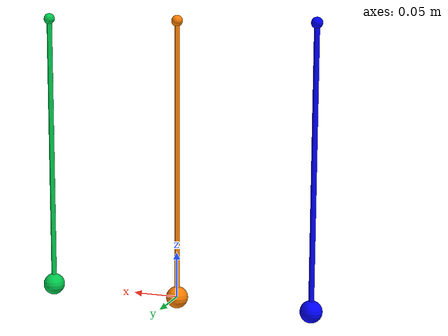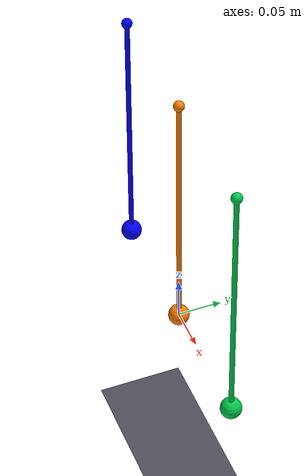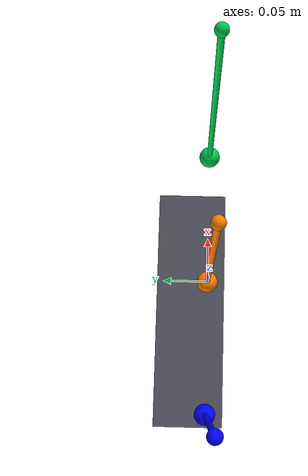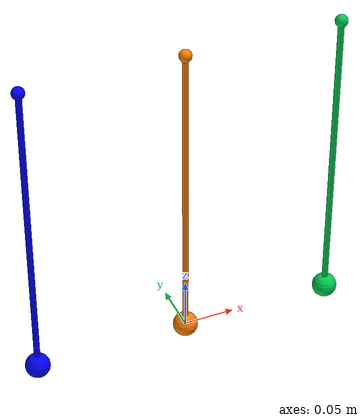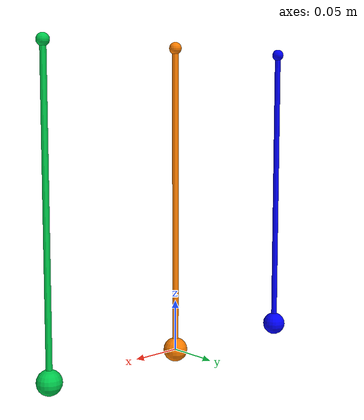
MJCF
<mujoco model="osim_muscle_test">
  <option timestep="0.001" gravity="0 0 -9.81" integrator="Euler"/>

  <default>
    <default class="mtu">
      <general biastype="none" ctrllimited="true" ctrlrange="0 1"
               dyntype="muscle" dynprm="0.01 0.04"/>
    </default>
    <default class="load">
      <joint type="slide" axis="0 0 1" damping="0"/>
      <geom type="sphere" size="0.012" mass="20"/>
      <site size="0.005"/>
    </default>
  </default>

  <worldbody>
    <light pos="0 -0.5 1"/>
    <geom name="floor" type="plane" size="1 1 0.05" pos="0 0 -0.3" rgba=".3 .3 .35 1"/>

    <!-- anchors -->
    <site name="anchor_song"    pos="-0.15 0 0.30" size="0.006" rgba="0 0 1 1"/>
    <site name="anchor_millard" pos=" 0.00 0 0.30" size="0.006" rgba="1 .5 0 1"/>
    <site name="anchor_hyfydy"  pos=" 0.15 0 0.30" size="0.006" rgba="0 .8 .3 1"/>

    <body name="load_song" pos="-0.15 0 0" childclass="load">
      <joint name="slide_song"/>
      <site name="ins_song" rgba="0 0 1 1"/>
      <geom rgba="0 0 1 1"/>
    </body>
    <body name="load_millard" pos="0 0 0" childclass="load">
      <joint name="slide_millard"/>
      <site name="ins_millard" rgba="1 .5 0 1"/>
      <geom rgba="1 .5 0 1"/>
    </body>
    <body name="load_hyfydy" pos="0.15 0 0" childclass="load">
      <joint name="slide_hyfydy"/>
      <site name="ins_hyfydy" rgba="0 .8 .3 1"/>
      <geom rgba="0 .8 .3 1"/>
    </body>
  </worldbody>

  <tendon>
    <spatial name="ten_song" width="0.003" rgba="0 0 1 1">
      <site site="anchor_song"/><site site="ins_song"/>
    </spatial>
    <spatial name="ten_millard" width="0.003" rgba="1 .5 0 1">
      <site site="anchor_millard"/><site site="ins_millard"/>
    </spatial>
    <spatial name="ten_hyfydy" width="0.003" rgba="0 .8 .3 1">
      <site site="anchor_hyfydy"/><site site="ins_hyfydy"/>
    </spatial>
  </tendon>

  <actuator>
    <!-- Song: F_max, l_opt, l_slack, v_max, W, C, N, K, E_REF -->
    <general class="mtu" name="song" tendon="ten_song" gaintype="compliant_mtu"
             gainprm="3000 0.15 0.15 10 0.56 -2.995732274 1.5 5.0 0.04"/>

    <general class="mtu" name="millard" tendon="ten_millard" gaintype="millard_mtu"
             gainprm="3000 0.15 0.15 10 0.15 0.1"/>

    <general class="mtu" name="hyfydy" tendon="ten_hyfydy" gaintype="hyfydy_mtu"
             gainprm="3000 0.15 0.15 10 0.15 0.1"/>
  </actuator>

  <sensor>
    <tendonpos name="len_song" tendon="ten_song"/>
    <tendonpos name="len_millard" tendon="ten_millard"/>
    <tendonpos name="len_hyfydy" tendon="ten_hyfydy"/>
    <actuatorfrc name="frc_song" actuator="song"/>
    <actuatorfrc name="frc_millard" actuator="millard"/>
    <actuatorfrc name="frc_hyfydy" actuator="hyfydy"/>
    <jointpos name="pos_song" joint="slide_song"/>
    <jointpos name="pos_millard" joint="slide_millard"/>
    <jointpos name="pos_hyfydy" joint="slide_hyfydy"/>
  </sensor>
</mujoco>
